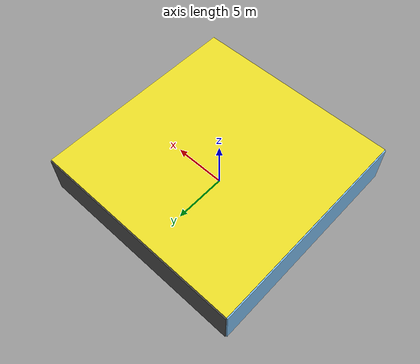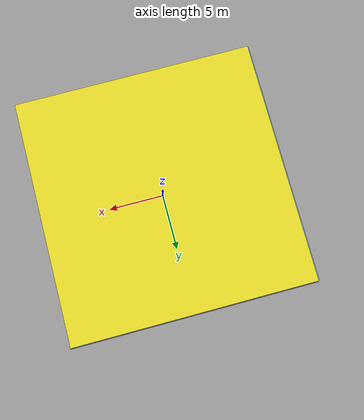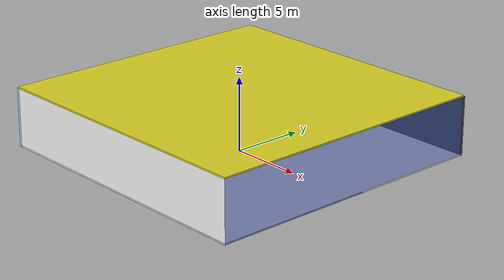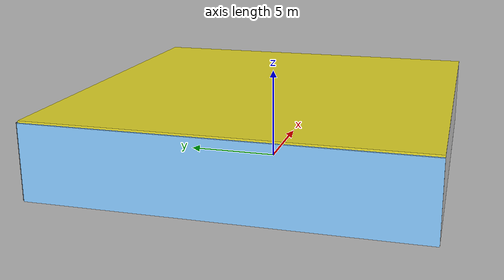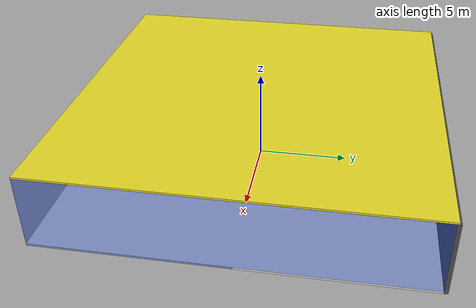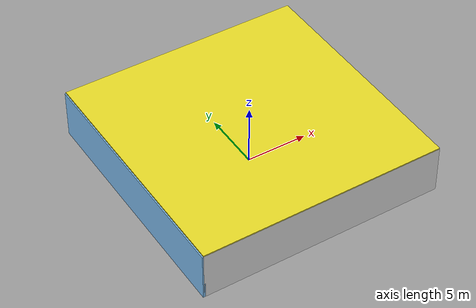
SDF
<sdf version="1.4">
 <world name="default">
  <physics type="ode">
   <max_step_size>0.001</max_step_size>
   <real_time_factor>1</real_time_factor>
   <real_time_update_rate>1000</real_time_update_rate>
   <gravity>0 0 -9.8</gravity>
  </physics>
  <scene><ambient>0.4 0.4 0.4 1</ambient><background>0.7 0.7 0.7 1</background><shadows>1</shadows></scene>
  <model name="Surrounding">
   <static>1</static>
   <link name="Ceiling">
    <collision name="Ceiling_Collision"><geometry><box><size>20 20 0.1</size></box></geometry></collision>
    <visual name="Ceiling_Visual">
     <geometry><box><size>20 20 0.1</size></box></geometry>
     <material>
      <script><uri>file://media/materials/scripts/gazebo.material</uri><name>Gazebo/Yellow</name></script>
     </material>
    </visual>
    <pose>0 0 4.05 0 0 0</pose>
   </link>
   <link name="Wall_South">
    <collision name="Wall_South_Collision">
     <geometry><box><size>20 0 4</size></box></geometry>
     <pose>0 0 2 0 -0 0</pose>
    </collision>
    <visual name="Wall_South_Visual">
     <pose>0 0 2 0 -0 0</pose>
     <geometry><box><size>20 0 4</size></box></geometry>
     <material>
      <script><uri>file://media/materials/scripts/gazebo.material</uri><name>Gazebo/White</name></script>
     </material>
    </visual>
    <velocity_decay><linear>0</linear><angular>0</angular></velocity_decay>
    <pose>0 -10 0 0 -0 0</pose>
   </link>
   <link name="Wall_East">
    <collision name="Wall_21_Collision">
     <geometry><box><size>20 0 4</size></box></geometry>
     <pose>0 0 2 0 -0 0</pose>
    </collision>
    <visual name="Wall_21_Visual">
     <pose>0 0 2 0 -0 0</pose>
     <geometry><box><size>20 0 4</size></box></geometry>
     <material>
      <script><uri>file://media/materials/scripts/gazebo.material</uri><name>Gazebo/BlueTransparent</name></script>
     </material>
    </visual>
    <velocity_decay><linear>0</linear><angular>0</angular></velocity_decay>
    <pose>10 0 0 0 -0 1.5708</pose>
   </link>
   <link name="Wall_North">
    <collision name="Wall_22_Collision">
     <geometry><box><size>20 0.2 4</size></box></geometry>
     <pose>0 0 2 0 -0 0</pose>
    </collision>
    <visual name="Wall_22_Visual">
     <pose>0 0 2 0 -0 0</pose>
     <geometry><box><size>20 0.2 4</size></box></geometry>
     <material>
      <script><uri>file://media/materials/scripts/gazebo.material</uri><name>Gazebo/DarkGrey</name></script>
     </material>
    </visual>
    <velocity_decay><linear>0</linear><angular>0</angular></velocity_decay>
    <pose>0 10 0 0 -0 0</pose>
   </link>
   <link name="Wall_West">
    <collision name="Wall_23_Collision">
     <geometry><box><size>20 0.2 4</size></box></geometry>
     <pose>0 0 2 0 -0 0</pose>
    </collision>
    <visual name="Wall_23_Visual">
     <pose>0 0 2 0 -0 0</pose>
     <geometry><box><size>20 0.2 4</size></box></geometry>
     <material>
      <script><uri>file://media/materials/scripts/gazebo.material</uri><name>Gazebo/SkyBlue</name></script>
     </material>
    </visual>
    <velocity_decay><linear>0</linear><angular>0</angular></velocity_decay>
    <pose>-10 0 0 0 0 -1.5708</pose>
   </link>
   <link name="Ground_link">
    <collision name="collision">
     <pose>0 0 .05 0 -0 0</pose>
     <geometry><box><size>20 20 0.1</size></box></geometry>
    </collision>
    <visual name="visual">
     <pose>0 0 .05 0 -0 0</pose>
     <geometry><box><size>20 20 0.1</size></box></geometry>
     <material>
      <script><uri>file://media/materials/scripts/gazebo.material</uri><name>Gazebo/WhiteGlow</name></script>
     </material>
    </visual>
   </link>
   <static>1</static>
  </model>
  <spherical_coordinates>
   <surface_model>EARTH_WGS84</surface_model>
   <latitude_deg>0</latitude_deg>
   <longitude_deg>0</longitude_deg>
   <elevation>0</elevation>
   <heading_deg>0</heading_deg>
  </spherical_coordinates>
  <light name="lightball_0" type="diffuse">
   <diffuse>0.8 0.8 0.8 1</diffuse>
   <specular>0.2 0.2 0.2 1</specular>
   <attenuation>
    <range>100</range>
    <constant>0.7</constant>
    <linear>0.01</linear>
    <quadratic>0.001</quadratic>
   </attenuation>
   <direction>-0.5 0.1 -0.9</direction>
   <pose>-5.76518743883 -1.86248007644 1.76101008044 0 0 0</pose>
  </light>
  <light name="lightball_1" type="diffuse">
   <diffuse>0.8 0.8 0.8 1</diffuse>
   <specular>0.2 0.2 0.2 1</specular>
   <attenuation>
    <range>100</range>
    <constant>0.7</constant>
    <linear>0.01</linear>
    <quadratic>0.001</quadratic>
   </attenuation>
   <direction>-0.5 0.1 -0.9</direction>
   <pose>-3.64492830298 -2.76010946474 2.02000799314 0 0 0</pose>
  </light>
  <light name="lightball_2" type="diffuse">
   <diffuse>0.8 0.8 0.8 1</diffuse>
   <specular>0.2 0.2 0.2 1</specular>
   <attenuation>
    <range>100</range>
    <constant>0.7</constant>
    <linear>0.01</linear>
    <quadratic>0.001</quadratic>
   </attenuation>
   <direction>-0.5 0.1 -0.9</direction>
   <pose>-8.60608241758 -3.04999473925 2.71130098954 0 0 0</pose>
  </light>
  <light name="lightball_3" type="diffuse">
   <diffuse>0.8 0.8 0.8 1</diffuse>
   <specular>0.2 0.2 0.2 1</specular>
   <attenuation>
    <range>100</range>
    <constant>0.7</constant>
    <linear>0.01</linear>
    <quadratic>0.001</quadratic>
   </attenuation>
   <direction>-0.5 0.1 -0.9</direction>
   <pose>9.57301356544 -5.83230733997 2.78325354225 0 0 0</pose>
  </light>
  <light name="lightball_4" type="diffuse">
   <diffuse>0.8 0.8 0.8 1</diffuse>
   <specular>0.2 0.2 0.2 1</specular>
   <attenuation>
    <range>100</range>
    <constant>0.7</constant>
    <linear>0.01</linear>
    <quadratic>0.001</quadratic>
   </attenuation>
   <direction>-0.5 0.1 -0.9</direction>
   <pose>-5.42096839403 -2.08097911178 1.36604446826 0 0 0</pose>
  </light>
  <light name="lightball_5" type="diffuse">
   <diffuse>0.8 0.8 0.8 1</diffuse>
   <specular>0.2 0.2 0.2 1</specular>
   <attenuation>
    <range>100</range>
    <constant>0.7</constant>
    <linear>0.01</linear>
    <quadratic>0.001</quadratic>
   </attenuation>
   <direction>-0.5 0.1 -0.9</direction>
   <pose>-7.96265962534 -7.3715509061 3.28242769115 0 0 0</pose>
  </light>
  <light name="lightball_6" type="diffuse">
   <diffuse>0.8 0.8 0.8 1</diffuse>
   <specular>0.2 0.2 0.2 1</specular>
   <attenuation>
    <range>100</range>
    <constant>0.7</constant>
    <linear>0.01</linear>
    <quadratic>0.001</quadratic>
   </attenuation>
   <direction>-0.5 0.1 -0.9</direction>
   <pose>-3.0738492104 -8.77027670203 3.66458913502 0 0 0</pose>
  </light>
  <light name="lightball_7" type="diffuse">
   <diffuse>0.8 0.8 0.8 1</diffuse>
   <specular>0.2 0.2 0.2 1</specular>
   <attenuation>
    <range>100</range>
    <constant>0.7</constant>
    <linear>0.01</linear>
    <quadratic>0.001</quadratic>
   </attenuation>
   <direction>-0.5 0.1 -0.9</direction>
   <pose>-7.25553303809 -5.84290324198 1.37496320692 0 0 0</pose>
  </light>
  <light name="lightball_8" type="diffuse">
   <diffuse>0.8 0.8 0.8 1</diffuse>
   <specular>0.2 0.2 0.2 1</specular>
   <attenuation>
    <range>100</range>
    <constant>0.7</constant>
    <linear>0.01</linear>
    <quadratic>0.001</quadratic>
   </attenuation>
   <direction>-0.5 0.1 -0.9</direction>
   <pose>-0.045866642844 -8.83895093675 2.47067211833 0 0 0</pose>
  </light>
  <light name="lightball_9" type="diffuse">
   <diffuse>0.8 0.8 0.8 1</diffuse>
   <specular>0.2 0.2 0.2 1</specular>
   <attenuation>
    <range>100</range>
    <constant>0.7</constant>
    <linear>0.01</linear>
    <quadratic>0.001</quadratic>
   </attenuation>
   <direction>-0.5 0.1 -0.9</direction>
   <pose>8.78410329279 9.85254198202 2.62327125995 0 0 0</pose>
  </light>
  <light name="lightball_10" type="diffuse">
   <diffuse>0.8 0.8 0.8 1</diffuse>
   <specular>0.2 0.2 0.2 1</specular>
   <attenuation>
    <range>100</range>
    <constant>0.7</constant>
    <linear>0.01</linear>
    <quadratic>0.001</quadratic>
   </attenuation>
   <direction>-0.5 0.1 -0.9</direction>
   <pose>1.71290103994 5.19005920297 1.23366916182 0 0 0</pose>
  </light>
  <light name="lightball_11" type="diffuse">
   <diffuse>0.8 0.8 0.8 1</diffuse>
   <specular>0.2 0.2 0.2 1</specular>
   <attenuation>
    <range>100</range>
    <constant>0.7</constant>
    <linear>0.01</linear>
    <quadratic>0.001</quadratic>
   </attenuation>
   <direction>-0.5 0.1 -0.9</direction>
   <pose>1.74506855522 -4.57449547793 3.1121597057 0 0 0</pose>
  </light>
  <include><uri>model://cabinet</uri><pose>-6.81290945496 2.51139526939 0 0 0 2.34678534792</pose></include>
  <include><uri>model://cabinet</uri><pose>-1.43534409916 -1.52010772557 0 0 0 1.64377127689</pose></include>
 </world>
</sdf>

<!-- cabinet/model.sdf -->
<sdf version="1.5">
  <model name="cabinet">
    <static>true</static>
    <link name="cabinet_bottom_plate">
      <inertial>
        <pose>0 0 -1 0 0 0</pose>
        <inertia>
          <ixx>2.050000</ixx>
          <ixy>0</ixy>
          <ixz>0</ixz>
          <iyy>2.050000</iyy>
          <iyz>0</iyz>
          <izz>2.050000</izz>
        </inertia>
        <mass>25.000000</mass>
      </inertial>
      <collision name="cabinet_bottom_plate_geom">
        <pose>0 0 0.010000 0 0 0</pose>
        <geometry>
          <box>
            <size>0.450000 0.450000 0.020000</size>
          </box>
        </geometry>
      </collision>
      <visual name="cabinet_bottom_plate_geom_visual">
        <pose>0 0 0.010000 0 0 0</pose>
        <geometry>
          <box>
            <size>0.450000 0.450000 0.020000</size>
          </box>
        </geometry>
        <material>
          <script>
            <uri>model://media/materials/scripts/gazebo.material</uri>
            <name>Gazebo/Wood</name>
          </script>
        </material>
      </visual>
      <collision name="cabinet_bottom_plate_geom_cabinet_back_plate">
        <pose>0.235000 0 0.510000 0 0 0</pose>
        <geometry>
          <box>
            <size>0.020000 0.450000 1.020000</size>
          </box>
        </geometry>
      </collision>
      <visual name="cabinet_bottom_plate_geom_cabinet_back_plate_visual">
        <pose>0.235000 0 0.510000 0 0 0</pose>
        <geometry>
          <box>
            <size>0.020000 0.450000 1.020000</size>
          </box>
        </geometry>
        <material>
          <script>
            <uri>model://media/materials/scripts/gazebo.material</uri>
            <name>Gazebo/Wood</name>
          </script>
        </material>
      </visual>
      <collision name="cabinet_bottom_plate_geom_cabinet_left_plate">
        <pose>0 0.235000 0.510000 0 0 0</pose>
        <geometry>
          <box>
            <size>0.450000 0.020000 1.020000</size>
          </box>
        </geometry>
      </collision>
      <visual name="cabinet_bottom_plate_geom_cabinet_left_plate_visual">
        <pose>0 0.235000 0.510000 0 0 0</pose>
        <geometry>
          <box>
            <size>0.450000 0.020000 1.020000</size>
          </box>
        </geometry>
        <material>
          <script>
            <uri>model://media/materials/scripts/gazebo.material</uri>
            <name>Gazebo/Wood</name>
          </script>
        </material>
      </visual>
      <collision name="cabinet_bottom_plate_geom_cabinet_middle_plate">
        <pose>0 0 0.510000 0 0 0</pose>
        <geometry>
          <box>
            <size>0.450000 0.450000 0.020000</size>
          </box>
        </geometry>
      </collision>
      <visual name="cabinet_bottom_plate_geom_cabinet_middle_plate_visual">
        <pose>0 0 0.510000 0 0 0</pose>
        <geometry>
          <box>
            <size>0.450000 0.450000 0.020000</size>
          </box>
        </geometry>
        <material>
          <script>
            <uri>model://media/materials/scripts/gazebo.material</uri>
            <name>Gazebo/Wood</name>
          </script>
        </material>
      </visual>
      <collision name="cabinet_bottom_plate_geom_cabinet_right_plate">
        <pose>0 -0.235000 0.510000 0 0 0</pose>
        <geometry>
          <box>
            <size>0.450000 0.020000 1.020000</size>
          </box>
        </geometry>
      </collision>
      <visual name="cabinet_bottom_plate_geom_cabinet_right_plate_visual">
        <pose>0 -0.235000 0.510000 0 0 0</pose>
        <geometry>
          <box>
            <size>0.450000 0.020000 1.020000</size>
          </box>
        </geometry>
        <material>
          <script>
            <uri>model://media/materials/scripts/gazebo.material</uri>
            <name>Gazebo/Wood</name>
          </script>
        </material>
      </visual>
      <collision name="cabinet_bottom_plate_geom_cabinet_top_plate">
        <pose>0 0 1.010000 0 0 0</pose>
        <geometry>
          <box>
            <size>0.450000 0.450000 0.020000</size>
          </box>
        </geometry>
      </collision>
      <visual name="cabinet_bottom_plate_geom_cabinet_top_plate_visual">
        <pose>0 0 1.010000 0 0 0</pose>
        <geometry>
          <box>
            <size>0.450000 0.450000 0.020000</size>
          </box>
        </geometry>
        <material>
          <script>
            <uri>model://media/materials/scripts/gazebo.material</uri>
            <name>Gazebo/Wood</name>
          </script>
        </material>
      </visual>
    </link>
  </model>
</sdf>
